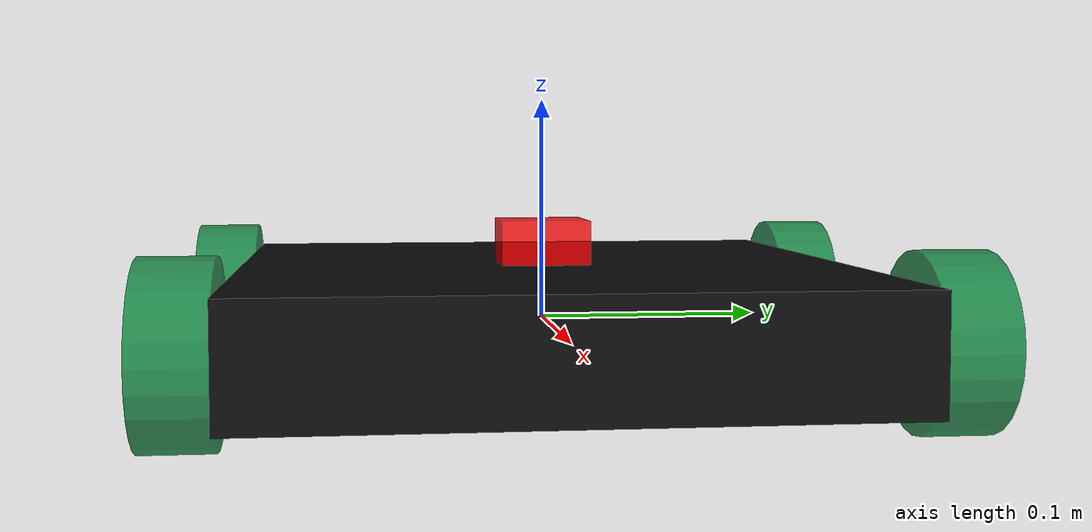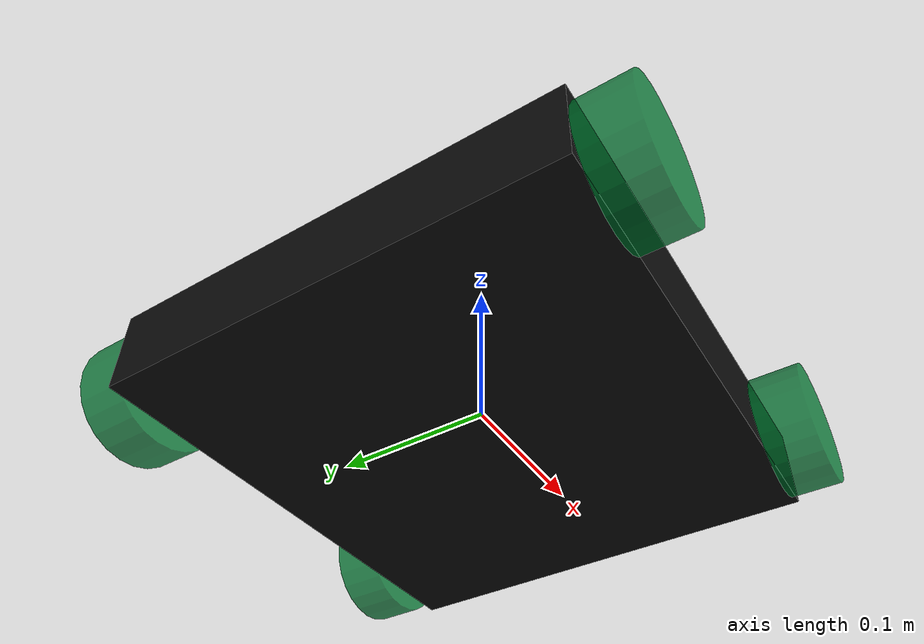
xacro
<?xml version="1.0"?>
<robot xmlns:xacro="http://www.ros.org/wiki/xacro" name="genimind">
    <!-- 声明base_link模块 -->
    <xacro:macro name="base_link" params="size ">
        <link name="base_link">
            <visual>
                <origin xyz="0.0 0.0 0.0" rpy="0.0 0.0 0.0"/>
                <geometry>
                    <box size="${size}"/>
                </geometry>
                <material name="carbon_fiber">
                    <color rgba="0.05 0.05 0.05 1.0"/>
                </material>
            </visual>
        </link>
    </xacro:macro>
    <!-- 声明imu_link模块 -->
    <xacro:macro name="imu_link" params="imu_name xyz">
        <!-- link -->
        <link name="${imu_name}_link">
            <visual>
                <origin xyz="0.0 0.0 0.0" rpy="0.0 0.0 0.0"/>
                <geometry>
                    <box size="0.04 0.04 0.02"/>
                </geometry>
                <material name="red">
                    <color rgba="1 0.0 0.0 0.8"/>
                </material>
            </visual>
        </link>
        <!-- joint -->
        <joint name="${imu_name}_joint" type="fixed">
            <origin xyz="${xyz}" rpy="0.0 0.0 0.0"/>
            <parent link="base_link"/>
            <child link="${imu_name}_link"/>
        </joint>
    </xacro:macro>

    <!-- 声明wheel_link模块 -->
    <xacro:macro name="wheel_link" params="wheel_name xyz">
        <!-- link -->
        <link name="${wheel_name}_link">
            <visual>
                <origin xyz="0.0 0.0 0.0" rpy="1.57 0.0 0.0"/>
                <geometry>
                    <cylinder radius="0.0375" length="0.03"/>
                </geometry>
                <material name="green">
                    <color rgba="0.0 0.5 0.2 0.8"/>
                </material>
            </visual>
        </link>
        <!-- joint -->
        <joint name="${wheel_name}_joint" type="continuous">
            <origin xyz="${xyz}" rpy="0.0 0.0 0.0"/>
            <parent link="base_link"/>
            <child link="${wheel_name}_link"/>
        </joint>
    </xacro:macro>

    <!-- 使用xacro模块 -->
    <xacro:base_link size="0.3 0.274 0.05"/>
    <xacro:imu_link imu_name="imu_main" xyz="0.0 0.0 0.035"/>
    <xacro:wheel_link wheel_name="front_left_wheel" xyz="0.1125 0.152 0.0"/>
    <xacro:wheel_link wheel_name="front_right_wheel" xyz="0.1125 -0.152 0.0"/>
    <xacro:wheel_link wheel_name="back_left_wheel" xyz="-0.1125 0.152 0.0"/>
    <xacro:wheel_link wheel_name="back_right_wheel" xyz="-0.1125 -0.152 0.0"/>
</robot>
